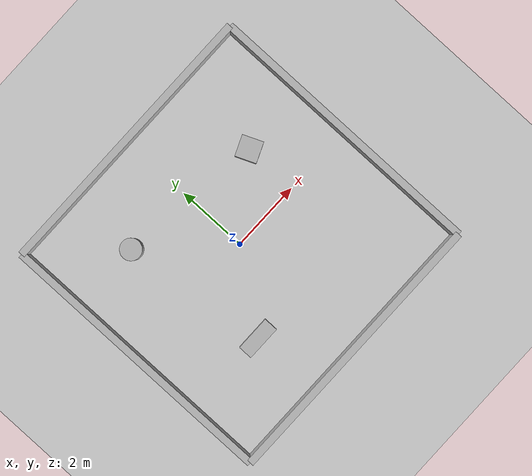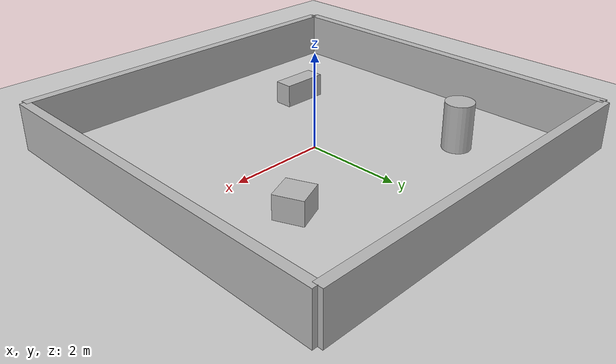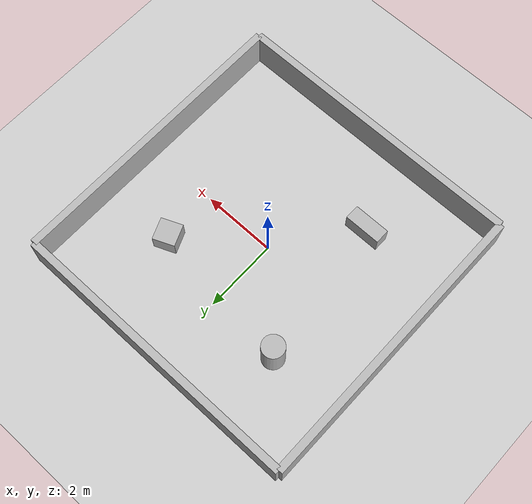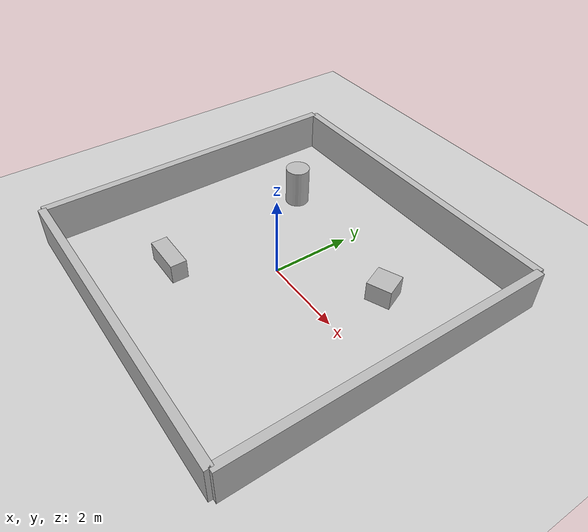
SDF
<?xml version="1.0"?>
<sdf version="1.6">
  <world name="room">
    <include><uri>model://ground_plane</uri></include>
    <include><uri>model://sun</uri></include>

    <!-- Walls -->
    <model name="wall_north">
      <static>true</static>
      <pose>0 4 0.5 0 0 0</pose>
      <link name="link">
        <collision name="c"><geometry><box><size>8 0.2 1</size></box></geometry></collision>
        <visual name="v"><geometry><box><size>8 0.2 1</size></box></geometry></visual>
      </link>
    </model>
    <model name="wall_south">
      <static>true</static>
      <pose>0 -4 0.5 0 0 0</pose>
      <link name="link">
        <collision name="c"><geometry><box><size>8 0.2 1</size></box></geometry></collision>
        <visual name="v"><geometry><box><size>8 0.2 1</size></box></geometry></visual>
      </link>
    </model>
    <model name="wall_east">
      <static>true</static>
      <pose>4 0 0.5 0 0 0</pose>
      <link name="link">
        <collision name="c"><geometry><box><size>0.2 8 1</size></box></geometry></collision>
        <visual name="v"><geometry><box><size>0.2 8 1</size></box></geometry></visual>
      </link>
    </model>
    <model name="wall_west">
      <static>true</static>
      <pose>-4 0 0.5 0 0 0</pose>
      <link name="link">
        <collision name="c"><geometry><box><size>0.2 8 1</size></box></geometry></collision>
        <visual name="v"><geometry><box><size>0.2 8 1</size></box></geometry></visual>
      </link>
    </model>

    <!-- Obstacles -->
    <model name="box_1">
      <static>true</static>
      <pose>2 1.5 0.25 0 0 0.4</pose>
      <link name="link">
        <collision name="c"><geometry><box><size>0.6 0.6 0.5</size></box></geometry></collision>
        <visual name="v"><geometry><box><size>0.6 0.6 0.5</size></box></geometry></visual>
      </link>
    </model>
    <model name="box_2">
      <static>true</static>
      <pose>-1.5 -2 0.25 0 0 0</pose>
      <link name="link">
        <collision name="c"><geometry><box><size>1.0 0.4 0.5</size></box></geometry></collision>
        <visual name="v"><geometry><box><size>1.0 0.4 0.5</size></box></geometry></visual>
      </link>
    </model>
    <model name="pillar">
      <static>true</static>
      <pose>-2 2 0.5 0 0 0</pose>
      <link name="link">
        <collision name="c"><geometry><cylinder><radius>0.3</radius><length>1</length></cylinder></geometry></collision>
        <visual name="v"><geometry><cylinder><radius>0.3</radius><length>1</length></cylinder></geometry></visual>
      </link>
    </model>
  </world>
</sdf>
